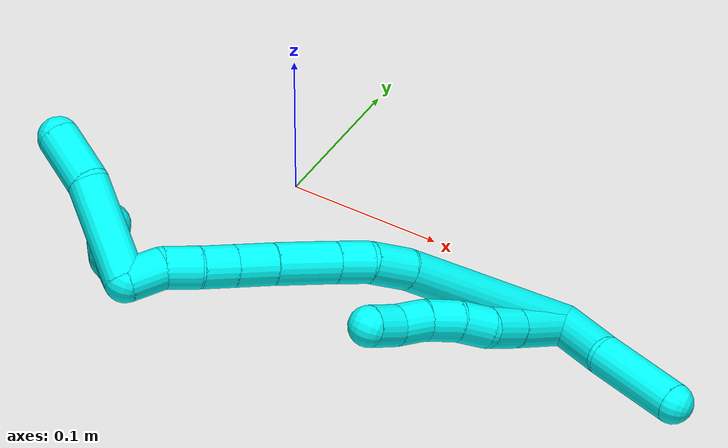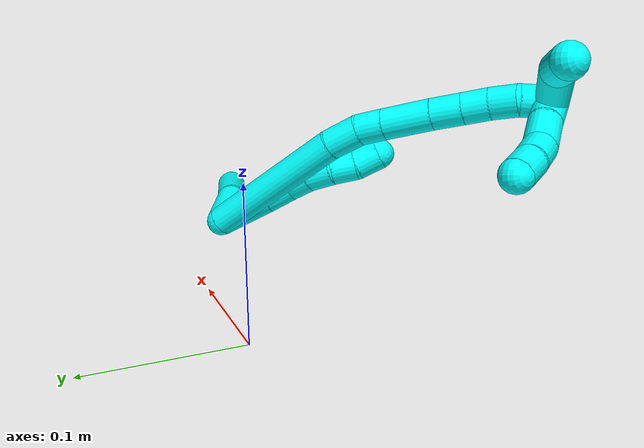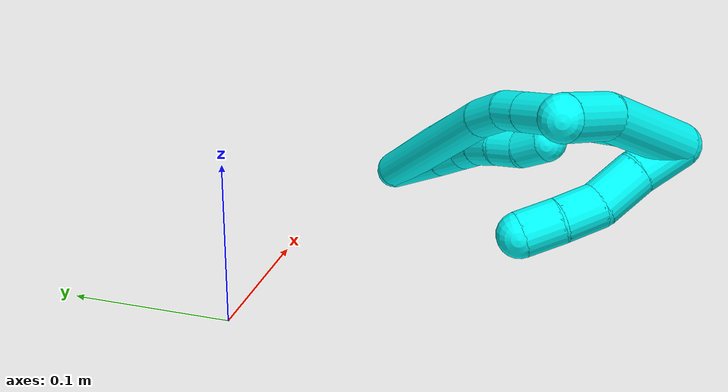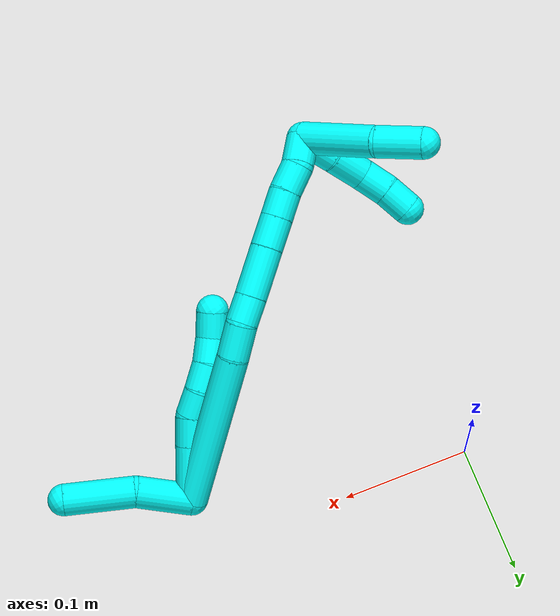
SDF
<sdf version="1.7">
 <world name="default">
  <model name="3">
   <static>0</static>
   <link name="3">
    <collision name="collision-cylinder-e_1_2_8">
     <pose>-0.018268 -0.001142 -0.011513 3.04274 -1.00626 -2.96232</pose>
     <geometry><cylinder><radius>0.0125</radius><length>0.043247</length></cylinder></geometry>
     <surface>
      <friction><ode><mu>1.16</mu><mu2>1.16</mu2><slip1>0</slip1><slip2>0</slip2></ode></friction>
      <contact><ode><kp>1e+06</kp><kd>1</kd><max_vel>0</max_vel><min_depth>0.001</min_depth></ode></contact>
     </surface>
    </collision>
    <visual name="visual-cylinder-e_1_2_8">
     <pose>-0.018268 -0.001142 -0.011513 3.04274 -1.00626 -2.96232</pose>
     <geometry><cylinder><radius>0.0125</radius><length>0.043247</length></cylinder></geometry>
     <material><ambient>0.003922 1 0.996078 1</ambient></material>
    </visual>
    <collision name="collision-cylinder-e_2_8_9">
     <pose>-0.046189 -0.002607 -0.029228 3.08945 -0.998998 -3.04609</pose>
     <geometry><cylinder><radius>0.0125</radius><length>0.022957</length></cylinder></geometry>
     <surface>
      <friction><ode><mu>1.16</mu><mu2>1.16</mu2><slip1>0</slip1><slip2>0</slip2></ode></friction>
      <contact><ode><kp>1e+06</kp><kd>1</kd><max_vel>0</max_vel><min_depth>0.001</min_depth></ode></contact>
     </surface>
    </collision>
    <visual name="visual-cylinder-e_2_8_9">
     <pose>-0.046189 -0.002607 -0.029228 3.08945 -0.998998 -3.04609</pose>
     <geometry><cylinder><radius>0.0125</radius><length>0.022957</length></cylinder></geometry>
     <material><ambient>0.003922 1 0.996078 1</ambient></material>
    </visual>
    <collision name="collision-cylinder-e_3_9_10">
     <pose>-0.062355 -0.002586 -0.043476 -3.09871 -0.680136 3.02053</pose>
     <geometry><cylinder><radius>0.0125</radius><length>0.020713</length></cylinder></geometry>
     <surface>
      <friction><ode><mu>1.16</mu><mu2>1.16</mu2><slip1>0</slip1><slip2>0</slip2></ode></friction>
      <contact><ode><kp>1e+06</kp><kd>1</kd><max_vel>0</max_vel><min_depth>0.001</min_depth></ode></contact>
     </surface>
    </collision>
    <visual name="visual-cylinder-e_3_9_10">
     <pose>-0.062355 -0.002586 -0.043476 -3.09871 -0.680136 3.02053</pose>
     <geometry><cylinder><radius>0.0125</radius><length>0.020713</length></cylinder></geometry>
     <material><ambient>0.003922 1 0.996078 1</ambient></material>
    </visual>
    <collision name="collision-cylinder-e_4_10_11">
     <pose>-0.075817 -0.003788 -0.059734 2.9554 -0.693582 -2.63595</pose>
     <geometry><cylinder><radius>0.0125</radius><length>0.021739</length></cylinder></geometry>
     <surface>
      <friction><ode><mu>1.16</mu><mu2>1.16</mu2><slip1>0</slip1><slip2>0</slip2></ode></friction>
      <contact><ode><kp>1e+06</kp><kd>1</kd><max_vel>0</max_vel><min_depth>0.001</min_depth></ode></contact>
     </surface>
    </collision>
    <visual name="visual-cylinder-e_4_10_11">
     <pose>-0.075817 -0.003788 -0.059734 2.9554 -0.693582 -2.63595</pose>
     <geometry><cylinder><radius>0.0125</radius><length>0.021739</length></cylinder></geometry>
     <material><ambient>0.003922 1 0.996078 1</ambient></material>
    </visual>
    <collision name="collision-cylinder-e_5_11_12">
     <pose>-0.090192 -0.00808 -0.074427 2.74093 -0.812297 -2.25935</pose>
     <geometry><cylinder><radius>0.0125</radius><length>0.020461</length></cylinder></geometry>
     <surface>
      <friction><ode><mu>1.16</mu><mu2>1.16</mu2><slip1>0</slip1><slip2>0</slip2></ode></friction>
      <contact><ode><kp>1e+06</kp><kd>1</kd><max_vel>0</max_vel><min_depth>0.001</min_depth></ode></contact>
     </surface>
    </collision>
    <visual name="visual-cylinder-e_5_11_12">
     <pose>-0.090192 -0.00808 -0.074427 2.74093 -0.812297 -2.25935</pose>
     <geometry><cylinder><radius>0.0125</radius><length>0.020461</length></cylinder></geometry>
     <material><ambient>0.003922 1 0.996078 1</ambient></material>
    </visual>
    <collision name="collision-cylinder-e_6_12_6">
     <pose>-0.106281 -0.011332 -0.086713 3.05439 -0.978625 -2.9781</pose>
     <geometry><cylinder><radius>0.0125</radius><length>0.020884</length></cylinder></geometry>
     <surface>
      <friction><ode><mu>1.16</mu><mu2>1.16</mu2><slip1>0</slip1><slip2>0</slip2></ode></friction>
      <contact><ode><kp>1e+06</kp><kd>1</kd><max_vel>0</max_vel><min_depth>0.001</min_depth></ode></contact>
     </surface>
    </collision>
    <visual name="visual-cylinder-e_6_12_6">
     <pose>-0.106281 -0.011332 -0.086713 3.05439 -0.978625 -2.9781</pose>
     <geometry><cylinder><radius>0.0125</radius><length>0.020884</length></cylinder></geometry>
     <material><ambient>0.003922 1 0.996078 1</ambient></material>
    </visual>
    <collision name="collision-cylinder-e_1_2_13">
     <pose>-0.014828 0.000944 0.016352 -0.057642 -0.735714 0.02222</pose>
     <geometry><cylinder><radius>0.0125</radius><length>0.044188</length></cylinder></geometry>
     <surface>
      <friction><ode><mu>1.16</mu><mu2>1.16</mu2><slip1>0</slip1><slip2>0</slip2></ode></friction>
      <contact><ode><kp>1e+06</kp><kd>1</kd><max_vel>0</max_vel><min_depth>0.001</min_depth></ode></contact>
     </surface>
    </collision>
    <visual name="visual-cylinder-e_1_2_13">
     <pose>-0.014828 0.000944 0.016352 -0.057642 -0.735714 0.02222</pose>
     <geometry><cylinder><radius>0.0125</radius><length>0.044188</length></cylinder></geometry>
     <material><ambient>0.003922 1 0.996078 1</ambient></material>
    </visual>
    <collision name="collision-cylinder-e_2_13_5">
     <pose>-0.041906 0.000806 0.057754 0.043118 -0.454496 -0.009972</pose>
     <geometry><cylinder><radius>0.0125</radius><length>0.055812</length></cylinder></geometry>
     <surface>
      <friction><ode><mu>1.16</mu><mu2>1.16</mu2><slip1>0</slip1><slip2>0</slip2></ode></friction>
      <contact><ode><kp>1e+06</kp><kd>1</kd><max_vel>0</max_vel><min_depth>0.001</min_depth></ode></contact>
     </surface>
    </collision>
    <visual name="visual-cylinder-e_2_13_5">
     <pose>-0.041906 0.000806 0.057754 0.043118 -0.454496 -0.009972</pose>
     <geometry><cylinder><radius>0.0125</radius><length>0.055812</length></cylinder></geometry>
     <material><ambient>0.003922 1 0.996078 1</ambient></material>
    </visual>
    <collision name="collision-cylinder-e_1_2_14">
     <pose>-0.041418 0.009527 -0.04415 -2.92905 -0.742134 2.60643</pose>
     <geometry><cylinder><radius>0.0125</radius><length>0.122562</length></cylinder></geometry>
     <surface>
      <friction><ode><mu>1.16</mu><mu2>1.16</mu2><slip1>0</slip1><slip2>0</slip2></ode></friction>
      <contact><ode><kp>1e+06</kp><kd>1</kd><max_vel>0</max_vel><min_depth>0.001</min_depth></ode></contact>
     </surface>
    </collision>
    <visual name="visual-cylinder-e_1_2_14">
     <pose>-0.041418 0.009527 -0.04415 -2.92905 -0.742134 2.60643</pose>
     <geometry><cylinder><radius>0.0125</radius><length>0.122562</length></cylinder></geometry>
     <material><ambient>0.003922 1 0.996078 1</ambient></material>
    </visual>
    <collision name="collision-cylinder-e_2_14_15">
     <pose>-0.092221 0.019337 -0.098085 -3.11271 -0.764332 3.06975</pose>
     <geometry><cylinder><radius>0.0125</radius><length>0.027125</length></cylinder></geometry>
     <surface>
      <friction><ode><mu>1.16</mu><mu2>1.16</mu2><slip1>0</slip1><slip2>0</slip2></ode></friction>
      <contact><ode><kp>1e+06</kp><kd>1</kd><max_vel>0</max_vel><min_depth>0.001</min_depth></ode></contact>
     </surface>
    </collision>
    <visual name="visual-cylinder-e_2_14_15">
     <pose>-0.092221 0.019337 -0.098085 -3.11271 -0.764332 3.06975</pose>
     <geometry><cylinder><radius>0.0125</radius><length>0.027125</length></cylinder></geometry>
     <material><ambient>0.003922 1 0.996078 1</ambient></material>
    </visual>
    <collision name="collision-cylinder-e_3_15_16">
     <pose>-0.107953 0.017478 -0.116177 2.88921 -0.636934 -2.40692</pose>
     <geometry><cylinder><radius>0.0125</radius><length>0.02134</length></cylinder></geometry>
     <surface>
      <friction><ode><mu>1.16</mu><mu2>1.16</mu2><slip1>0</slip1><slip2>0</slip2></ode></friction>
      <contact><ode><kp>1e+06</kp><kd>1</kd><max_vel>0</max_vel><min_depth>0.001</min_depth></ode></contact>
     </surface>
    </collision>
    <visual name="visual-cylinder-e_3_15_16">
     <pose>-0.107953 0.017478 -0.116177 2.88921 -0.636934 -2.40692</pose>
     <geometry><cylinder><radius>0.0125</radius><length>0.02134</length></cylinder></geometry>
     <material><ambient>0.003922 1 0.996078 1</ambient></material>
    </visual>
    <collision name="collision-cylinder-e_4_16_17">
     <pose>-0.126045 0.011158 -0.139338 2.8674 -0.650618 -2.36506</pose>
     <geometry><cylinder><radius>0.0125</radius><length>0.038787</length></cylinder></geometry>
     <surface>
      <friction><ode><mu>1.16</mu><mu2>1.16</mu2><slip1>0</slip1><slip2>0</slip2></ode></friction>
      <contact><ode><kp>1e+06</kp><kd>1</kd><max_vel>0</max_vel><min_depth>0.001</min_depth></ode></contact>
     </surface>
    </collision>
    <visual name="visual-cylinder-e_4_16_17">
     <pose>-0.126045 0.011158 -0.139338 2.8674 -0.650618 -2.36506</pose>
     <geometry><cylinder><radius>0.0125</radius><length>0.038787</length></cylinder></geometry>
     <material><ambient>0.003922 1 0.996078 1</ambient></material>
    </visual>
    <collision name="collision-cylinder-e_5_17_18">
     <pose>-0.144993 0.004054 -0.163497 2.83696 -0.636058 -2.26895</pose>
     <geometry><cylinder><radius>0.0125</radius><length>0.024246</length></cylinder></geometry>
     <surface>
      <friction><ode><mu>1.16</mu><mu2>1.16</mu2><slip1>0</slip1><slip2>0</slip2></ode></friction>
      <contact><ode><kp>1e+06</kp><kd>1</kd><max_vel>0</max_vel><min_depth>0.001</min_depth></ode></contact>
     </surface>
    </collision>
    <visual name="visual-cylinder-e_5_17_18">
     <pose>-0.144993 0.004054 -0.163497 2.83696 -0.636058 -2.26895</pose>
     <geometry><cylinder><radius>0.0125</radius><length>0.024246</length></cylinder></geometry>
     <material><ambient>0.003922 1 0.996078 1</ambient></material>
    </visual>
    <collision name="collision-cylinder-e_6_18_19">
     <pose>-0.158402 -0.001355 -0.18079 2.84014 -0.638283 -2.27993</pose>
     <geometry><cylinder><radius>0.0125</radius><length>0.020837</length></cylinder></geometry>
     <surface>
      <friction><ode><mu>1.16</mu><mu2>1.16</mu2><slip1>0</slip1><slip2>0</slip2></ode></friction>
      <contact><ode><kp>1e+06</kp><kd>1</kd><max_vel>0</max_vel><min_depth>0.001</min_depth></ode></contact>
     </surface>
    </collision>
    <visual name="visual-cylinder-e_6_18_19">
     <pose>-0.158402 -0.001355 -0.18079 2.84014 -0.638283 -2.27993</pose>
     <geometry><cylinder><radius>0.0125</radius><length>0.020837</length></cylinder></geometry>
     <material><ambient>0.003922 1 0.996078 1</ambient></material>
    </visual>
    <collision name="collision-cylinder-e_7_19_20">
     <pose>-0.169953 -0.006626 -0.197874 2.84422 -0.511944 -2.10191</pose>
     <geometry><cylinder><radius>0.0125</radius><length>0.021818</length></cylinder></geometry>
     <surface>
      <friction><ode><mu>1.16</mu><mu2>1.16</mu2><slip1>0</slip1><slip2>0</slip2></ode></friction>
      <contact><ode><kp>1e+06</kp><kd>1</kd><max_vel>0</max_vel><min_depth>0.001</min_depth></ode></contact>
     </surface>
    </collision>
    <visual name="visual-cylinder-e_7_19_20">
     <pose>-0.169953 -0.006626 -0.197874 2.84422 -0.511944 -2.10191</pose>
     <geometry><cylinder><radius>0.0125</radius><length>0.021818</length></cylinder></geometry>
     <material><ambient>0.003922 1 0.996078 1</ambient></material>
    </visual>
    <collision name="collision-cylinder-e_8_20_1">
     <pose>-0.182125 -0.015271 -0.214356 2.47122 -0.626691 -1.49852</pose>
     <geometry><cylinder><radius>0.0125</radius><length>0.023284</length></cylinder></geometry>
     <surface>
      <friction><ode><mu>1.16</mu><mu2>1.16</mu2><slip1>0</slip1><slip2>0</slip2></ode></friction>
      <contact><ode><kp>1e+06</kp><kd>1</kd><max_vel>0</max_vel><min_depth>0.001</min_depth></ode></contact>
     </surface>
    </collision>
    <visual name="visual-cylinder-e_8_20_1">
     <pose>-0.182125 -0.015271 -0.214356 2.47122 -0.626691 -1.49852</pose>
     <geometry><cylinder><radius>0.0125</radius><length>0.023284</length></cylinder></geometry>
     <material><ambient>0.003922 1 0.996078 1</ambient></material>
    </visual>
    <collision name="collision-cylinder-e_1_1_21">
     <pose>-0.176291 -0.002734 -0.244279 -2.45698 0.41053 -1.05756</pose>
     <geometry><cylinder><radius>0.0125</radius><length>0.063451</length></cylinder></geometry>
     <surface>
      <friction><ode><mu>1.16</mu><mu2>1.16</mu2><slip1>0</slip1><slip2>0</slip2></ode></friction>
      <contact><ode><kp>1e+06</kp><kd>1</kd><max_vel>0</max_vel><min_depth>0.001</min_depth></ode></contact>
     </surface>
    </collision>
    <visual name="visual-cylinder-e_1_1_21">
     <pose>-0.176291 -0.002734 -0.244279 -2.45698 0.41053 -1.05756</pose>
     <geometry><cylinder><radius>0.0125</radius><length>0.063451</length></cylinder></geometry>
     <material><ambient>0.003922 1 0.996078 1</ambient></material>
    </visual>
    <collision name="collision-cylinder-e_2_21_4">
     <pose>-0.154762 0.021827 -0.281555 -2.74542 0.506653 -1.8226</pose>
     <geometry><cylinder><radius>0.0125</radius><length>0.036549</length></cylinder></geometry>
     <surface>
      <friction><ode><mu>1.16</mu><mu2>1.16</mu2><slip1>0</slip1><slip2>0</slip2></ode></friction>
      <contact><ode><kp>1e+06</kp><kd>1</kd><max_vel>0</max_vel><min_depth>0.001</min_depth></ode></contact>
     </surface>
    </collision>
    <visual name="visual-cylinder-e_2_21_4">
     <pose>-0.154762 0.021827 -0.281555 -2.74542 0.506653 -1.8226</pose>
     <geometry><cylinder><radius>0.0125</radius><length>0.036549</length></cylinder></geometry>
     <material><ambient>0.003922 1 0.996078 1</ambient></material>
    </visual>
    <collision name="collision-cylinder-e_1_1_22">
     <pose>-0.176273 -0.022217 -0.227785 2.96356 1.12001 2.85878</pose>
     <geometry><cylinder><radius>0.0125</radius><length>0.028174</length></cylinder></geometry>
     <surface>
      <friction><ode><mu>1.16</mu><mu2>1.16</mu2><slip1>0</slip1><slip2>0</slip2></ode></friction>
      <contact><ode><kp>1e+06</kp><kd>1</kd><max_vel>0</max_vel><min_depth>0.001</min_depth></ode></contact>
     </surface>
    </collision>
    <visual name="visual-cylinder-e_1_1_22">
     <pose>-0.176273 -0.022217 -0.227785 2.96356 1.12001 2.85878</pose>
     <geometry><cylinder><radius>0.0125</radius><length>0.028174</length></cylinder></geometry>
     <material><ambient>0.003922 1 0.996078 1</ambient></material>
    </visual>
    <collision name="collision-cylinder-e_2_22_23">
     <pose>-0.151453 -0.026064 -0.239398 2.68163 1.09742 2.41011</pose>
     <geometry><cylinder><radius>0.0125</radius><length>0.027281</length></cylinder></geometry>
     <surface>
      <friction><ode><mu>1.16</mu><mu2>1.16</mu2><slip1>0</slip1><slip2>0</slip2></ode></friction>
      <contact><ode><kp>1e+06</kp><kd>1</kd><max_vel>0</max_vel><min_depth>0.001</min_depth></ode></contact>
     </surface>
    </collision>
    <visual name="visual-cylinder-e_2_22_23">
     <pose>-0.151453 -0.026064 -0.239398 2.68163 1.09742 2.41011</pose>
     <geometry><cylinder><radius>0.0125</radius><length>0.027281</length></cylinder></geometry>
     <material><ambient>0.003922 1 0.996078 1</ambient></material>
    </visual>
    <collision name="collision-cylinder-e_3_23_24">
     <pose>-0.129012 -0.027562 -0.249654 -2.8783 1.13062 -2.73004</pose>
     <geometry><cylinder><radius>0.0125</radius><length>0.022771</length></cylinder></geometry>
     <surface>
      <friction><ode><mu>1.16</mu><mu2>1.16</mu2><slip1>0</slip1><slip2>0</slip2></ode></friction>
      <contact><ode><kp>1e+06</kp><kd>1</kd><max_vel>0</max_vel><min_depth>0.001</min_depth></ode></contact>
     </surface>
    </collision>
    <visual name="visual-cylinder-e_3_23_24">
     <pose>-0.129012 -0.027562 -0.249654 -2.8783 1.13062 -2.73004</pose>
     <geometry><cylinder><radius>0.0125</radius><length>0.022771</length></cylinder></geometry>
     <material><ambient>0.003922 1 0.996078 1</ambient></material>
    </visual>
    <collision name="collision-cylinder-e_4_24_3">
     <pose>-0.108396 -0.024929 -0.257537 -2.73695 1.24545 -2.58506</pose>
     <geometry><cylinder><radius>0.0125</radius><length>0.021774</length></cylinder></geometry>
     <surface>
      <friction><ode><mu>1.16</mu><mu2>1.16</mu2><slip1>0</slip1><slip2>0</slip2></ode></friction>
      <contact><ode><kp>1e+06</kp><kd>1</kd><max_vel>0</max_vel><min_depth>0.001</min_depth></ode></contact>
     </surface>
    </collision>
    <visual name="visual-cylinder-e_4_24_3">
     <pose>-0.108396 -0.024929 -0.257537 -2.73695 1.24545 -2.58506</pose>
     <geometry><cylinder><radius>0.0125</radius><length>0.021774</length></cylinder></geometry>
     <material><ambient>0.003922 1 0.996078 1</ambient></material>
    </visual>
    <collision name="collision-sphere-3">
     <pose>-0.09808 -0.023559 -0.260736 0 -0 0</pose>
     <geometry><sphere><radius>0.0125</radius></sphere></geometry>
     <surface>
      <friction><ode><mu>1.16</mu><mu2>1.16</mu2><slip1>0</slip1><slip2>0</slip2></ode></friction>
      <contact><ode><kp>1e+06</kp><kd>1</kd><max_vel>0</max_vel><min_depth>0.001</min_depth></ode></contact>
     </surface>
    </collision>
    <visual name="visual-sphere-3">
     <pose>-0.09808 -0.023559 -0.260736 0 -0 0</pose>
     <geometry><sphere><radius>0.0125</radius></sphere></geometry>
     <material><ambient>0.003922 1 0.996078 1</ambient></material>
    </visual>
    <collision name="collision-sphere-24">
     <pose>-0.118712 -0.026299 -0.254338 0 -0 0</pose>
     <geometry><sphere><radius>0.0125</radius></sphere></geometry>
     <surface>
      <friction><ode><mu>1.16</mu><mu2>1.16</mu2><slip1>0</slip1><slip2>0</slip2></ode></friction>
      <contact><ode><kp>1e+06</kp><kd>1</kd><max_vel>0</max_vel><min_depth>0.001</min_depth></ode></contact>
     </surface>
    </collision>
    <visual name="visual-sphere-24">
     <pose>-0.118712 -0.026299 -0.254338 0 -0 0</pose>
     <geometry><sphere><radius>0.0125</radius></sphere></geometry>
     <material><ambient>0.003922 1 0.996078 1</ambient></material>
    </visual>
    <collision name="collision-sphere-23">
     <pose>-0.139312 -0.028825 -0.24497 0 -0 0</pose>
     <geometry><sphere><radius>0.0125</radius></sphere></geometry>
     <surface>
      <friction><ode><mu>1.16</mu><mu2>1.16</mu2><slip1>0</slip1><slip2>0</slip2></ode></friction>
      <contact><ode><kp>1e+06</kp><kd>1</kd><max_vel>0</max_vel><min_depth>0.001</min_depth></ode></contact>
     </surface>
    </collision>
    <visual name="visual-sphere-23">
     <pose>-0.139312 -0.028825 -0.24497 0 -0 0</pose>
     <geometry><sphere><radius>0.0125</radius></sphere></geometry>
     <material><ambient>0.003922 1 0.996078 1</ambient></material>
    </visual>
    <collision name="collision-sphere-22">
     <pose>-0.163593 -0.023304 -0.233826 0 -0 0</pose>
     <geometry><sphere><radius>0.0125</radius></sphere></geometry>
     <surface>
      <friction><ode><mu>1.16</mu><mu2>1.16</mu2><slip1>0</slip1><slip2>0</slip2></ode></friction>
      <contact><ode><kp>1e+06</kp><kd>1</kd><max_vel>0</max_vel><min_depth>0.001</min_depth></ode></contact>
     </surface>
    </collision>
    <visual name="visual-sphere-22">
     <pose>-0.163593 -0.023304 -0.233826 0 -0 0</pose>
     <geometry><sphere><radius>0.0125</radius></sphere></geometry>
     <material><ambient>0.003922 1 0.996078 1</ambient></material>
    </visual>
    <collision name="collision-sphere-4">
     <pose>-0.145894 0.027993 -0.296296 0 -0 0</pose>
     <geometry><sphere><radius>0.0125</radius></sphere></geometry>
     <surface>
      <friction><ode><mu>1.16</mu><mu2>1.16</mu2><slip1>0</slip1><slip2>0</slip2></ode></friction>
      <contact><ode><kp>1e+06</kp><kd>1</kd><max_vel>0</max_vel><min_depth>0.001</min_depth></ode></contact>
     </surface>
    </collision>
    <visual name="visual-sphere-4">
     <pose>-0.145894 0.027993 -0.296296 0 -0 0</pose>
     <geometry><sphere><radius>0.0125</radius></sphere></geometry>
     <material><ambient>0.003922 1 0.996078 1</ambient></material>
    </visual>
    <collision name="collision-sphere-21">
     <pose>-0.16363 0.015661 -0.266814 0 -0 0</pose>
     <geometry><sphere><radius>0.0125</radius></sphere></geometry>
     <surface>
      <friction><ode><mu>1.16</mu><mu2>1.16</mu2><slip1>0</slip1><slip2>0</slip2></ode></friction>
      <contact><ode><kp>1e+06</kp><kd>1</kd><max_vel>0</max_vel><min_depth>0.001</min_depth></ode></contact>
     </surface>
    </collision>
    <visual name="visual-sphere-21">
     <pose>-0.16363 0.015661 -0.266814 0 -0 0</pose>
     <geometry><sphere><radius>0.0125</radius></sphere></geometry>
     <material><ambient>0.003922 1 0.996078 1</ambient></material>
    </visual>
    <collision name="collision-sphere-1">
     <pose>-0.188953 -0.02113 -0.221745 0 -0 0</pose>
     <geometry><sphere><radius>0.0125</radius></sphere></geometry>
     <surface>
      <friction><ode><mu>1.16</mu><mu2>1.16</mu2><slip1>0</slip1><slip2>0</slip2></ode></friction>
      <contact><ode><kp>1e+06</kp><kd>1</kd><max_vel>0</max_vel><min_depth>0.001</min_depth></ode></contact>
     </surface>
    </collision>
    <visual name="visual-sphere-1">
     <pose>-0.188953 -0.02113 -0.221745 0 -0 0</pose>
     <geometry><sphere><radius>0.0125</radius></sphere></geometry>
     <material><ambient>0.003922 1 0.996078 1</ambient></material>
    </visual>
    <collision name="collision-sphere-12">
     <pose>-0.097617 -0.010824 -0.080907 0 -0 0</pose>
     <geometry><sphere><radius>0.0125</radius></sphere></geometry>
     <surface>
      <friction><ode><mu>1.16</mu><mu2>1.16</mu2><slip1>0</slip1><slip2>0</slip2></ode></friction>
      <contact><ode><kp>1e+06</kp><kd>1</kd><max_vel>0</max_vel><min_depth>0.001</min_depth></ode></contact>
     </surface>
    </collision>
    <visual name="visual-sphere-12">
     <pose>-0.097617 -0.010824 -0.080907 0 -0 0</pose>
     <geometry><sphere><radius>0.0125</radius></sphere></geometry>
     <material><ambient>0.003922 1 0.996078 1</ambient></material>
    </visual>
    <collision name="collision-sphere-11">
     <pose>-0.082766 -0.005335 -0.067948 0 -0 0</pose>
     <geometry><sphere><radius>0.0125</radius></sphere></geometry>
     <surface>
      <friction><ode><mu>1.16</mu><mu2>1.16</mu2><slip1>0</slip1><slip2>0</slip2></ode></friction>
      <contact><ode><kp>1e+06</kp><kd>1</kd><max_vel>0</max_vel><min_depth>0.001</min_depth></ode></contact>
     </surface>
    </collision>
    <visual name="visual-sphere-11">
     <pose>-0.082766 -0.005335 -0.067948 0 -0 0</pose>
     <geometry><sphere><radius>0.0125</radius></sphere></geometry>
     <material><ambient>0.003922 1 0.996078 1</ambient></material>
    </visual>
    <collision name="collision-sphere-10">
     <pose>-0.068868 -0.002241 -0.051521 0 -0 0</pose>
     <geometry><sphere><radius>0.0125</radius></sphere></geometry>
     <surface>
      <friction><ode><mu>1.16</mu><mu2>1.16</mu2><slip1>0</slip1><slip2>0</slip2></ode></friction>
      <contact><ode><kp>1e+06</kp><kd>1</kd><max_vel>0</max_vel><min_depth>0.001</min_depth></ode></contact>
     </surface>
    </collision>
    <visual name="visual-sphere-10">
     <pose>-0.068868 -0.002241 -0.051521 0 -0 0</pose>
     <geometry><sphere><radius>0.0125</radius></sphere></geometry>
     <material><ambient>0.003922 1 0.996078 1</ambient></material>
    </visual>
    <collision name="collision-sphere-9">
     <pose>-0.055842 -0.002931 -0.035431 0 -0 0</pose>
     <geometry><sphere><radius>0.0125</radius></sphere></geometry>
     <surface>
      <friction><ode><mu>1.16</mu><mu2>1.16</mu2><slip1>0</slip1><slip2>0</slip2></ode></friction>
      <contact><ode><kp>1e+06</kp><kd>1</kd><max_vel>0</max_vel><min_depth>0.001</min_depth></ode></contact>
     </surface>
    </collision>
    <visual name="visual-sphere-9">
     <pose>-0.055842 -0.002931 -0.035431 0 -0 0</pose>
     <geometry><sphere><radius>0.0125</radius></sphere></geometry>
     <material><ambient>0.003922 1 0.996078 1</ambient></material>
    </visual>
    <collision name="collision-sphere-2">
     <geometry><sphere><radius>0.0125</radius></sphere></geometry>
     <surface>
      <friction><ode><mu>1.16</mu><mu2>1.16</mu2><slip1>0</slip1><slip2>0</slip2></ode></friction>
      <contact><ode><kp>1e+06</kp><kd>1</kd><max_vel>0</max_vel><min_depth>0.001</min_depth></ode></contact>
     </surface>
    </collision>
    <visual name="visual-sphere-2">
     <geometry><sphere><radius>0.0125</radius></sphere></geometry>
     <material><ambient>0.003922 1 0.996078 1</ambient></material>
    </visual>
    <collision name="collision-sphere-19">
     <pose>-0.164609 -0.00384 -0.18878 0 -0 0</pose>
     <geometry><sphere><radius>0.0125</radius></sphere></geometry>
     <surface>
      <friction><ode><mu>1.16</mu><mu2>1.16</mu2><slip1>0</slip1><slip2>0</slip2></ode></friction>
      <contact><ode><kp>1e+06</kp><kd>1</kd><max_vel>0</max_vel><min_depth>0.001</min_depth></ode></contact>
     </surface>
    </collision>
    <visual name="visual-sphere-19">
     <pose>-0.164609 -0.00384 -0.18878 0 -0 0</pose>
     <geometry><sphere><radius>0.0125</radius></sphere></geometry>
     <material><ambient>0.003922 1 0.996078 1</ambient></material>
    </visual>
    <collision name="collision-sphere-8">
     <pose>-0.036537 -0.002283 -0.023025 0 -0 0</pose>
     <geometry><sphere><radius>0.0125</radius></sphere></geometry>
     <surface>
      <friction><ode><mu>1.16</mu><mu2>1.16</mu2><slip1>0</slip1><slip2>0</slip2></ode></friction>
      <contact><ode><kp>1e+06</kp><kd>1</kd><max_vel>0</max_vel><min_depth>0.001</min_depth></ode></contact>
     </surface>
    </collision>
    <visual name="visual-sphere-8">
     <pose>-0.036537 -0.002283 -0.023025 0 -0 0</pose>
     <geometry><sphere><radius>0.0125</radius></sphere></geometry>
     <material><ambient>0.003922 1 0.996078 1</ambient></material>
    </visual>
    <collision name="collision-sphere-6">
     <pose>-0.114945 -0.011839 -0.092519 0 -0 0</pose>
     <geometry><sphere><radius>0.0125</radius></sphere></geometry>
     <surface>
      <friction><ode><mu>1.16</mu><mu2>1.16</mu2><slip1>0</slip1><slip2>0</slip2></ode></friction>
      <contact><ode><kp>1e+06</kp><kd>1</kd><max_vel>0</max_vel><min_depth>0.001</min_depth></ode></contact>
     </surface>
    </collision>
    <visual name="visual-sphere-6">
     <pose>-0.114945 -0.011839 -0.092519 0 -0 0</pose>
     <geometry><sphere><radius>0.0125</radius></sphere></geometry>
     <material><ambient>0.003922 1 0.996078 1</ambient></material>
    </visual>
    <collision name="collision-sphere-13">
     <pose>-0.029655 0.001887 0.032704 0 -0 0</pose>
     <geometry><sphere><radius>0.0125</radius></sphere></geometry>
     <surface>
      <friction><ode><mu>1.16</mu><mu2>1.16</mu2><slip1>0</slip1><slip2>0</slip2></ode></friction>
      <contact><ode><kp>1e+06</kp><kd>1</kd><max_vel>0</max_vel><min_depth>0.001</min_depth></ode></contact>
     </surface>
    </collision>
    <visual name="visual-sphere-13">
     <pose>-0.029655 0.001887 0.032704 0 -0 0</pose>
     <geometry><sphere><radius>0.0125</radius></sphere></geometry>
     <material><ambient>0.003922 1 0.996078 1</ambient></material>
    </visual>
    <collision name="collision-sphere-5">
     <pose>-0.054157 -0.000274 0.082804 0 -0 0</pose>
     <geometry><sphere><radius>0.0125</radius></sphere></geometry>
     <surface>
      <friction><ode><mu>1.16</mu><mu2>1.16</mu2><slip1>0</slip1><slip2>0</slip2></ode></friction>
      <contact><ode><kp>1e+06</kp><kd>1</kd><max_vel>0</max_vel><min_depth>0.001</min_depth></ode></contact>
     </surface>
    </collision>
    <visual name="visual-sphere-5">
     <pose>-0.054157 -0.000274 0.082804 0 -0 0</pose>
     <geometry><sphere><radius>0.0125</radius></sphere></geometry>
     <material><ambient>0.003922 1 0.996078 1</ambient></material>
    </visual>
    <collision name="collision-sphere-14">
     <pose>-0.082835 0.019055 -0.088299 0 -0 0</pose>
     <geometry><sphere><radius>0.0125</radius></sphere></geometry>
     <surface>
      <friction><ode><mu>1.16</mu><mu2>1.16</mu2><slip1>0</slip1><slip2>0</slip2></ode></friction>
      <contact><ode><kp>1e+06</kp><kd>1</kd><max_vel>0</max_vel><min_depth>0.001</min_depth></ode></contact>
     </surface>
    </collision>
    <visual name="visual-sphere-14">
     <pose>-0.082835 0.019055 -0.088299 0 -0 0</pose>
     <geometry><sphere><radius>0.0125</radius></sphere></geometry>
     <material><ambient>0.003922 1 0.996078 1</ambient></material>
    </visual>
    <collision name="collision-sphere-15">
     <pose>-0.101607 0.01962 -0.107871 0 -0 0</pose>
     <geometry><sphere><radius>0.0125</radius></sphere></geometry>
     <surface>
      <friction><ode><mu>1.16</mu><mu2>1.16</mu2><slip1>0</slip1><slip2>0</slip2></ode></friction>
      <contact><ode><kp>1e+06</kp><kd>1</kd><max_vel>0</max_vel><min_depth>0.001</min_depth></ode></contact>
     </surface>
    </collision>
    <visual name="visual-sphere-15">
     <pose>-0.101607 0.01962 -0.107871 0 -0 0</pose>
     <geometry><sphere><radius>0.0125</radius></sphere></geometry>
     <material><ambient>0.003922 1 0.996078 1</ambient></material>
    </visual>
    <collision name="collision-sphere-16">
     <pose>-0.114299 0.015336 -0.124483 0 -0 0</pose>
     <geometry><sphere><radius>0.0125</radius></sphere></geometry>
     <surface>
      <friction><ode><mu>1.16</mu><mu2>1.16</mu2><slip1>0</slip1><slip2>0</slip2></ode></friction>
      <contact><ode><kp>1e+06</kp><kd>1</kd><max_vel>0</max_vel><min_depth>0.001</min_depth></ode></contact>
     </surface>
    </collision>
    <visual name="visual-sphere-16">
     <pose>-0.114299 0.015336 -0.124483 0 -0 0</pose>
     <geometry><sphere><radius>0.0125</radius></sphere></geometry>
     <material><ambient>0.003922 1 0.996078 1</ambient></material>
    </visual>
    <collision name="collision-sphere-17">
     <pose>-0.137791 0.006979 -0.154194 0 -0 0</pose>
     <geometry><sphere><radius>0.0125</radius></sphere></geometry>
     <surface>
      <friction><ode><mu>1.16</mu><mu2>1.16</mu2><slip1>0</slip1><slip2>0</slip2></ode></friction>
      <contact><ode><kp>1e+06</kp><kd>1</kd><max_vel>0</max_vel><min_depth>0.001</min_depth></ode></contact>
     </surface>
    </collision>
    <visual name="visual-sphere-17">
     <pose>-0.137791 0.006979 -0.154194 0 -0 0</pose>
     <geometry><sphere><radius>0.0125</radius></sphere></geometry>
     <material><ambient>0.003922 1 0.996078 1</ambient></material>
    </visual>
    <collision name="collision-sphere-18">
     <pose>-0.152194 0.001129 -0.1728 0 -0 0</pose>
     <geometry><sphere><radius>0.0125</radius></sphere></geometry>
     <surface>
      <friction><ode><mu>1.16</mu><mu2>1.16</mu2><slip1>0</slip1><slip2>0</slip2></ode></friction>
      <contact><ode><kp>1e+06</kp><kd>1</kd><max_vel>0</max_vel><min_depth>0.001</min_depth></ode></contact>
     </surface>
    </collision>
    <visual name="visual-sphere-18">
     <pose>-0.152194 0.001129 -0.1728 0 -0 0</pose>
     <geometry><sphere><radius>0.0125</radius></sphere></geometry>
     <material><ambient>0.003922 1 0.996078 1</ambient></material>
    </visual>
    <collision name="collision-sphere-20">
     <pose>-0.175298 -0.009413 -0.206967 0 -0 0</pose>
     <geometry><sphere><radius>0.0125</radius></sphere></geometry>
     <surface>
      <friction><ode><mu>1.16</mu><mu2>1.16</mu2><slip1>0</slip1><slip2>0</slip2></ode></friction>
      <contact><ode><kp>1e+06</kp><kd>1</kd><max_vel>0</max_vel><min_depth>0.001</min_depth></ode></contact>
     </surface>
    </collision>
    <visual name="visual-sphere-20">
     <pose>-0.175298 -0.009413 -0.206967 0 -0 0</pose>
     <geometry><sphere><radius>0.0125</radius></sphere></geometry>
     <material><ambient>0.003922 1 0.996078 1</ambient></material>
    </visual>
    <inertial>
     <pose>-0.09683 -0.000501 -0.114376 0 -0 0</pose>
     <mass>0.75</mass>
     <inertia>
      <ixx>-8.4e-05</ixx>
      <ixy>0</ixy>
      <ixz>0</ixz>
      <iyy>0.000233</iyy>
      <iyz>0</iyz>
      <izz>6.2e-05</izz>
     </inertia>
    </inertial>
   </link>
   <pose>0.213077 -0.040346 0.015995 1.79445 0.477778 1.82589</pose>
  </model>
 </world>
</sdf>
